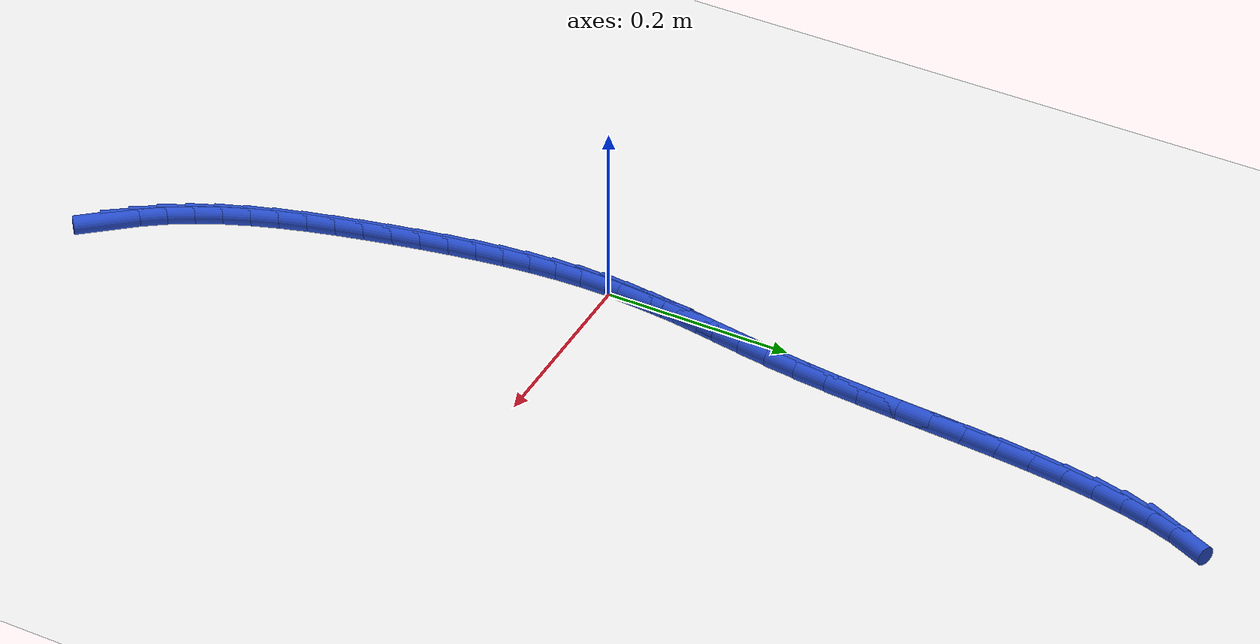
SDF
<sdf version="1.6">
 <world name="default">
  <model name="ground_plane">
   <static>1</static>
   <link name="link">
    <collision name="collision">
     <geometry><plane><normal>0 0 1</normal><size>100 100</size></plane></geometry>
     <surface><friction><ode><mu>100</mu><mu2>50</mu2></ode></friction></surface>
    </collision>
    <visual name="visual">
     <cast_shadows>0</cast_shadows>
     <geometry><plane><normal>0 0 1</normal><size>100 100</size></plane></geometry>
     <material>
      <script><uri>file://media/materials/scripts/gazebo.material</uri><name>Gazebo/WhiteGlow</name></script>
     </material>
    </visual>
   </link>
  </model>
  <model name="line">
   <link name="link_0">
    <pose>-1.6479873021779667e-17 0.0 0.01 0 1.57 1.5184382656846507</pose>
    <collision name="collision">
     <geometry><cylinder><radius>0.01</radius><length>0.08</length></cylinder></geometry>
    </collision>
    <visual name="visual">
     <material>
      <script><name>Gazebo/Blue</name><uri>file://media/materials/scripts/gazebo.material</uri></script>
     </material>
     <geometry><cylinder><radius>0.01</radius><length>0.08</length></cylinder></geometry>
    </visual>
   </link>
   <link name="link_1">
    <pose>0.0014574475222923252 0.027810721952906785 0.01 0 1.57 1.4770112874705195</pose>
    <collision name="collision">
     <geometry><cylinder><radius>0.01</radius><length>0.08</length></cylinder></geometry>
    </collision>
    <visual name="visual">
     <material>
      <script><name>Gazebo/Blue</name><uri>file://media/materials/scripts/gazebo.material</uri></script>
     </material>
     <geometry><cylinder><radius>0.01</radius><length>0.08</length></cylinder></geometry>
    </visual>
   </link>
   <link name="link_2">
    <pose>0.004054440207986188 0.05542039371427029 0.01 0 1.57 1.4455119472380362</pose>
    <collision name="collision">
     <geometry><cylinder><radius>0.01</radius><length>0.08</length></cylinder></geometry>
    </collision>
    <visual name="visual">
     <material>
      <script><name>Gazebo/Blue</name><uri>file://media/materials/scripts/gazebo.material</uri></script>
     </material>
     <geometry><cylinder><radius>0.01</radius><length>0.08</length></cylinder></geometry>
    </visual>
   </link>
   <link name="link_3">
    <pose>0.007540841671047062 0.08310254612929184 0.01 0 1.57 1.424648393871587</pose>
    <collision name="collision">
     <geometry><cylinder><radius>0.01</radius><length>0.08</length></cylinder></geometry>
    </collision>
    <visual name="visual">
     <material>
      <script><name>Gazebo/Blue</name><uri>file://media/materials/scripts/gazebo.material</uri></script>
     </material>
     <geometry><cylinder><radius>0.01</radius><length>0.08</length></cylinder></geometry>
    </visual>
   </link>
   <link name="link_4">
    <pose>0.011666515525440456 0.11113071004317263 0.01 0 1.57 1.4144843685888346</pose>
    <collision name="collision">
     <geometry><cylinder><radius>0.01</radius><length>0.08</length></cylinder></geometry>
    </collision>
    <visual name="visual">
     <material>
      <script><name>Gazebo/Blue</name><uri>file://media/materials/scripts/gazebo.material</uri></script>
     </material>
     <geometry><cylinder><radius>0.01</radius><length>0.08</length></cylinder></geometry>
    </visual>
   </link>
   <link name="link_5">
    <pose>0.01618132538513185 0.13977841630111387 0.01 0 1.57 1.414542060446958</pose>
    <collision name="collision">
     <geometry><cylinder><radius>0.01</radius><length>0.08</length></cylinder></geometry>
    </collision>
    <visual name="visual">
     <material>
      <script><name>Gazebo/Blue</name><uri>file://media/materials/scripts/gazebo.material</uri></script>
     </material>
     <geometry><cylinder><radius>0.01</radius><length>0.08</length></cylinder></geometry>
    </visual>
   </link>
   <link name="link_6">
    <pose>0.020835134864086738 0.16931919574831683 0.01 0 1.57 1.423927315164349</pose>
    <collision name="collision">
     <geometry><cylinder><radius>0.01</radius><length>0.08</length></cylinder></geometry>
    </collision>
    <visual name="visual">
     <material>
      <script><name>Gazebo/Blue</name><uri>file://media/materials/scripts/gazebo.material</uri></script>
     </material>
     <geometry><cylinder><radius>0.01</radius><length>0.08</length></cylinder></geometry>
    </visual>
   </link>
   <link name="link_7">
    <pose>0.025377807576270624 0.20002657922998274 0.01 0 1.57 1.4414533479040172</pose>
    <collision name="collision">
     <geometry><cylinder><radius>0.01</radius><length>0.08</length></cylinder></geometry>
    </collision>
    <visual name="visual">
     <material>
      <script><name>Gazebo/Blue</name><uri>file://media/materials/scripts/gazebo.material</uri></script>
     </material>
     <geometry><cylinder><radius>0.01</radius><length>0.08</length></cylinder></geometry>
    </visual>
   </link>
   <link name="link_8">
    <pose>0.029559207135649 0.2321740975913128 0.01 0 1.57 1.4654073668593173</pose>
    <collision name="collision">
     <geometry><cylinder><radius>0.01</radius><length>0.08</length></cylinder></geometry>
    </collision>
    <visual name="visual">
     <material>
      <script><name>Gazebo/Blue</name><uri>file://media/materials/scripts/gazebo.material</uri></script>
     </material>
     <geometry><cylinder><radius>0.01</radius><length>0.08</length></cylinder></geometry>
    </visual>
   </link>
   <link name="link_9">
    <pose>0.03313945484801601 0.2660199844694474 0.01 0 1.57 1.4872548854704863</pose>
    <collision name="collision">
     <geometry><cylinder><radius>0.01</radius><length>0.08</length></cylinder></geometry>
    </collision>
    <visual name="visual">
     <material>
      <script><name>Gazebo/Blue</name><uri>file://media/materials/scripts/gazebo.material</uri></script>
     </material>
     <geometry><cylinder><radius>0.01</radius><length>0.08</length></cylinder></geometry>
    </visual>
   </link>
   <link name="link_10">
    <pose>0.03610869935225758 0.3014794357077643 0.01 0 1.57 1.500647299681323</pose>
    <collision name="collision">
     <geometry><cylinder><radius>0.01</radius><length>0.08</length></cylinder></geometry>
    </collision>
    <visual name="visual">
     <material>
      <script><name>Gazebo/Blue</name><uri>file://media/materials/scripts/gazebo.material</uri></script>
     </material>
     <geometry><cylinder><radius>0.01</radius><length>0.08</length></cylinder></geometry>
    </visual>
   </link>
   <link name="link_11">
    <pose>0.03868388604429441 0.3381294270863123 0.01 0 1.57 1.5065138532888493</pose>
    <collision name="collision">
     <geometry><cylinder><radius>0.01</radius><length>0.08</length></cylinder></geometry>
    </collision>
    <visual name="visual">
     <material>
      <script><name>Gazebo/Blue</name><uri>file://media/materials/scripts/gazebo.material</uri></script>
     </material>
     <geometry><cylinder><radius>0.01</radius><length>0.08</length></cylinder></geometry>
    </visual>
   </link>
   <link name="link_12">
    <pose>0.041091571856145315 0.3755326007835918 0.01 0 1.57 1.5054914585599306</pose>
    <collision name="collision">
     <geometry><cylinder><radius>0.01</radius><length>0.08</length></cylinder></geometry>
    </collision>
    <visual name="visual">
     <material>
      <script><name>Gazebo/Blue</name><uri>file://media/materials/scripts/gazebo.material</uri></script>
     </material>
     <geometry><cylinder><radius>0.01</radius><length>0.08</length></cylinder></geometry>
    </visual>
   </link>
   <link name="link_13">
    <pose>0.043558313719829087 0.4132515989781033 0.01 0 1.57 1.497720817772451</pose>
    <collision name="collision">
     <geometry><cylinder><radius>0.01</radius><length>0.08</length></cylinder></geometry>
    </collision>
    <visual name="visual">
     <material>
      <script><name>Gazebo/Blue</name><uri>file://media/materials/scripts/gazebo.material</uri></script>
     </material>
     <geometry><cylinder><radius>0.01</radius><length>0.08</length></cylinder></geometry>
    </visual>
   </link>
   <link name="link_14">
    <pose>0.04631066856736449 0.4508490638483472 0.01 0 1.57 1.4828849888272446</pose>
    <collision name="collision">
     <geometry><cylinder><radius>0.01</radius><length>0.08</length></cylinder></geometry>
    </collision>
    <visual name="visual">
     <material>
      <script><name>Gazebo/Blue</name><uri>file://media/materials/scripts/gazebo.material</uri></script>
     </material>
     <geometry><cylinder><radius>0.01</radius><length>0.08</length></cylinder></geometry>
    </visual>
   </link>
   <link name="link_15">
    <pose>0.049575193330770304 0.487887637572824 0.01 0 1.57 1.460178876890645</pose>
    <collision name="collision">
     <geometry><cylinder><radius>0.01</radius><length>0.08</length></cylinder></geometry>
    </collision>
    <visual name="visual">
     <material>
      <script><name>Gazebo/Blue</name><uri>file://media/materials/scripts/gazebo.material</uri></script>
     </material>
     <geometry><cylinder><radius>0.01</radius><length>0.08</length></cylinder></geometry>
    </visual>
   </link>
   <link name="link_16">
    <pose>0.053578444942065345 0.5239299623300342 0.01 0 1.57 1.428207487026027</pose>
    <collision name="collision">
     <geometry><cylinder><radius>0.01</radius><length>0.08</length></cylinder></geometry>
    </collision>
    <visual name="visual">
     <material>
      <script><name>Gazebo/Blue</name><uri>file://media/materials/scripts/gazebo.material</uri></script>
     </material>
     <geometry><cylinder><radius>0.01</radius><length>0.08</length></cylinder></geometry>
    </visual>
   </link>
   <link name="link_17">
    <pose>0.0585469803332684 0.5585386802984782 0.01 0 1.57 1.3847978749277365</pose>
    <collision name="collision">
     <geometry><cylinder><radius>0.01</radius><length>0.08</length></cylinder></geometry>
    </collision>
    <visual name="visual">
     <material>
      <script><name>Gazebo/Blue</name><uri>file://media/materials/scripts/gazebo.material</uri></script>
     </material>
     <geometry><cylinder><radius>0.01</radius><length>0.08</length></cylinder></geometry>
    </visual>
   </link>
   <link name="link_18">
    <pose>0.06470735643639822 0.5912764336566566 0.01 0 1.57 1.326701956054612</pose>
    <collision name="collision">
     <geometry><cylinder><radius>0.01</radius><length>0.08</length></cylinder></geometry>
    </collision>
    <visual name="visual">
     <material>
      <script><name>Gazebo/Blue</name><uri>file://media/materials/scripts/gazebo.material</uri></script>
     </material>
     <geometry><cylinder><radius>0.01</radius><length>0.08</length></cylinder></geometry>
    </visual>
   </link>
   <link name="link_19">
    <pose>0.0722861301834736 0.6217058645830695 0.01 0 1.57 1.2491819491159826</pose>
    <collision name="collision">
     <geometry><cylinder><radius>0.01</radius><length>0.08</length></cylinder></geometry>
    </collision>
    <visual name="visual">
     <material>
      <script><name>Gazebo/Blue</name><uri>file://media/materials/scripts/gazebo.material</uri></script>
     </material>
     <geometry><cylinder><radius>0.01</radius><length>0.08</length></cylinder></geometry>
    </visual>
   </link>
   <link name="link_20">
    <pose>0.08150985850651336 0.649389615256218 0.01 0 1.57 1.1455717473456568</pose>
    <collision name="collision">
     <geometry><cylinder><radius>0.01</radius><length>0.08</length></cylinder></geometry>
    </collision>
    <visual name="visual">
     <material>
      <script><name>Gazebo/Blue</name><uri>file://media/materials/scripts/gazebo.material</uri></script>
     </material>
     <geometry><cylinder><radius>0.01</radius><length>0.08</length></cylinder></geometry>
    </visual>
   </link>
   <link name="link_232">
    <pose>0.14215743847026582 -0.5041512161085064 0.01 0 1.57 -0.8809039316055335</pose>
    <collision name="collision">
     <geometry><cylinder><radius>0.01</radius><length>0.08</length></cylinder></geometry>
    </collision>
    <visual name="visual">
     <material>
      <script><name>Gazebo/Blue</name><uri>file://media/materials/scripts/gazebo.material</uri></script>
     </material>
     <geometry><cylinder><radius>0.01</radius><length>0.08</length></cylinder></geometry>
    </visual>
   </link>
   <link name="link_233">
    <pose>0.12388084248835515 -0.4820019336749314 0.01 0 1.57 -0.9671642884657037</pose>
    <collision name="collision">
     <geometry><cylinder><radius>0.01</radius><length>0.08</length></cylinder></geometry>
    </collision>
    <visual name="visual">
     <material>
      <script><name>Gazebo/Blue</name><uri>file://media/materials/scripts/gazebo.material</uri></script>
     </material>
     <geometry><cylinder><radius>0.01</radius><length>0.08</length></cylinder></geometry>
    </visual>
   </link>
   <link name="link_234">
    <pose>0.10757779728315474 -0.458356584310406 0.01 0 1.57 -1.0480569457717026</pose>
    <collision name="collision">
     <geometry><cylinder><radius>0.01</radius><length>0.08</length></cylinder></geometry>
    </collision>
    <visual name="visual">
     <material>
      <script><name>Gazebo/Blue</name><uri>file://media/materials/scripts/gazebo.material</uri></script>
     </material>
     <geometry><cylinder><radius>0.01</radius><length>0.08</length></cylinder></geometry>
    </visual>
   </link>
   <link name="link_235">
    <pose>0.0931473562131126 -0.4333126474691159 0.01 0 1.57 -1.1187133006591503</pose>
    <collision name="collision">
     <geometry><cylinder><radius>0.01</radius><length>0.08</length></cylinder></geometry>
    </collision>
    <visual name="visual">
     <material>
      <script><name>Gazebo/Blue</name><uri>file://media/materials/scripts/gazebo.material</uri></script>
     </material>
     <geometry><cylinder><radius>0.01</radius><length>0.08</length></cylinder></geometry>
    </visual>
   </link>
   <link name="link_236">
    <pose>0.08039345790778751 -0.4070498879712661 0.01 0 1.57 -1.1792034184503182</pose>
    <collision name="collision">
     <geometry><cylinder><radius>0.01</radius><length>0.08</length></cylinder></geometry>
    </collision>
    <visual name="visual">
     <material>
      <script><name>Gazebo/Blue</name><uri>file://media/materials/scripts/gazebo.material</uri></script>
     </material>
     <geometry><cylinder><radius>0.01</radius><length>0.08</length></cylinder></geometry>
    </visual>
   </link>
   <link name="link_237">
    <pose>0.06912004087932655 -0.37974807073863626 0.01 0 1.57 -1.229932643566994</pose>
    <collision name="collision">
     <geometry><cylinder><radius>0.01</radius><length>0.08</length></cylinder></geometry>
    </collision>
    <visual name="visual">
     <material>
      <script><name>Gazebo/Blue</name><uri>file://media/materials/scripts/gazebo.material</uri></script>
     </material>
     <geometry><cylinder><radius>0.01</radius><length>0.08</length></cylinder></geometry>
    </visual>
   </link>
   <link name="link_238">
    <pose>0.059131043639876694 -0.35158696069300627 0.01 0 1.57 -1.271455182328641</pose>
    <collision name="collision">
     <geometry><cylinder><radius>0.01</radius><length>0.08</length></cylinder></geometry>
    </collision>
    <visual name="visual">
     <material>
      <script><name>Gazebo/Blue</name><uri>file://media/materials/scripts/gazebo.material</uri></script>
     </material>
     <geometry><cylinder><radius>0.01</radius><length>0.08</length></cylinder></geometry>
    </visual>
   </link>
   <link name="link_239">
    <pose>0.05023040470158505 -0.3227463227561559 0.01 0 1.57 -1.304340797614855</pose>
    <collision name="collision">
     <geometry><cylinder><radius>0.01</radius><length>0.08</length></cylinder></geometry>
    </collision>
    <visual name="visual">
     <material>
      <script><name>Gazebo/Blue</name><uri>file://media/materials/scripts/gazebo.material</uri></script>
     </material>
     <geometry><cylinder><radius>0.01</radius><length>0.08</length></cylinder></geometry>
    </visual>
   </link>
   <link name="link_240">
    <pose>0.04222206257659884 -0.2934059218498657 0.01 0 1.57 -1.3290884709420057</pose>
    <collision name="collision">
     <geometry><cylinder><radius>0.01</radius><length>0.08</length></cylinder></geometry>
    </collision>
    <visual name="visual">
     <material>
      <script><name>Gazebo/Blue</name><uri>file://media/materials/scripts/gazebo.material</uri></script>
     </material>
     <geometry><cylinder><radius>0.01</radius><length>0.08</length></cylinder></geometry>
    </visual>
   </link>
   <link name="link_241">
    <pose>0.03490995577706468 -0.26374552289591385 0.01 0 1.57 -1.346291929056852</pose>
    <collision name="collision">
     <geometry><cylinder><radius>0.01</radius><length>0.08</length></cylinder></geometry>
    </collision>
    <visual name="visual">
     <material>
      <script><name>Gazebo/Blue</name><uri>file://media/materials/scripts/gazebo.material</uri></script>
     </material>
     <geometry><cylinder><radius>0.01</radius><length>0.08</length></cylinder></geometry>
    </visual>
   </link>
   <link name="link_242">
    <pose>0.028104322558147158 -0.23394250990478138 0.01 0 1.57 -1.3613281450647918</pose>
    <collision name="collision">
     <geometry><cylinder><radius>0.01</radius><length>0.08</length></cylinder></geometry>
    </collision>
    <visual name="visual">
     <material>
      <script><name>Gazebo/Blue</name><uri>file://media/materials/scripts/gazebo.material</uri></script>
     </material>
     <geometry><cylinder><radius>0.01</radius><length>0.08</length></cylinder></geometry>
    </visual>
   </link>
   <link name="link_243">
    <pose>0.02176405184561112 -0.20411808617285446 0.01 0 1.57 -1.3795772954772654</pose>
    <collision name="collision">
     <geometry><cylinder><radius>0.01</radius><length>0.08</length></cylinder></geometry>
    </collision>
    <visual name="visual">
     <material>
      <script><name>Gazebo/Blue</name><uri>file://media/materials/scripts/gazebo.material</uri></script>
     </material>
     <geometry><cylinder><radius>0.01</radius><length>0.08</length></cylinder></geometry>
    </visual>
   </link>
   <link name="link_244">
    <pose>0.015998800670407737 -0.17433647402376157 0.01 0 1.57 -1.4014650634874024</pose>
    <collision name="collision">
     <geometry><cylinder><radius>0.01</radius><length>0.08</length></cylinder></geometry>
    </collision>
    <visual name="visual">
     <material>
      <script><name>Gazebo/Blue</name><uri>file://media/materials/scripts/gazebo.material</uri></script>
     </material>
     <geometry><cylinder><radius>0.01</radius><length>0.08</length></cylinder></geometry>
    </visual>
   </link>
   <link name="link_245">
    <pose>0.010924949319980325 -0.14465935480806114 0.01 0 1.57 -1.4272318991507307</pose>
    <collision name="collision">
     <geometry><cylinder><radius>0.01</radius><length>0.08</length></cylinder></geometry>
    </collision>
    <visual name="visual">
     <material>
      <script><name>Gazebo/Blue</name><uri>file://media/materials/scripts/gazebo.material</uri></script>
     </material>
     <geometry><cylinder><radius>0.01</radius><length>0.08</length></cylinder></geometry>
    </visual>
   </link>
   <link name="link_246">
    <pose>0.00665887808177224 -0.11514840987631188 0.01 0 1.57 -1.4571636971917672</pose>
    <collision name="collision">
     <geometry><cylinder><radius>0.01</radius><length>0.08</length></cylinder></geometry>
    </collision>
    <visual name="visual">
     <material>
      <script><name>Gazebo/Blue</name><uri>file://media/materials/scripts/gazebo.material</uri></script>
     </material>
     <geometry><cylinder><radius>0.01</radius><length>0.08</length></cylinder></geometry>
    </visual>
   </link>
   <link name="link_247">
    <pose>0.003316967243226822 -0.08586532057907245 0.01 0 1.57 -1.4915871595448829</pose>
    <collision name="collision">
     <geometry><cylinder><radius>0.01</radius><length>0.08</length></cylinder></geometry>
    </collision>
    <visual name="visual">
     <material>
      <script><name>Gazebo/Blue</name><uri>file://media/materials/scripts/gazebo.material</uri></script>
     </material>
     <geometry><cylinder><radius>0.01</radius><length>0.08</length></cylinder></geometry>
    </visual>
   </link>
   <link name="link_248">
    <pose>0.0010155970917874084 -0.056871768266901546 0.01 0 1.57 -1.5308610089310877</pose>
    <collision name="collision">
     <geometry><cylinder><radius>0.01</radius><length>0.08</length></cylinder></geometry>
    </collision>
    <visual name="visual">
     <material>
      <script><name>Gazebo/Blue</name><uri>file://media/materials/scripts/gazebo.material</uri></script>
     </material>
     <geometry><cylinder><radius>0.01</radius><length>0.08</length></cylinder></geometry>
    </visual>
   </link>
   <link name="link_249">
    <pose>-0.00012885208510265457 -0.02822943429035781 0.01 0 1.57 1.566231899858757</pose>
    <collision name="collision">
     <geometry><cylinder><radius>0.01</radius><length>0.08</length></cylinder></geometry>
    </collision>
    <visual name="visual">
     <material>
      <script><name>Gazebo/Blue</name><uri>file://media/materials/scripts/gazebo.material</uri></script>
     </material>
     <geometry><cylinder><radius>0.01</radius><length>0.08</length></cylinder></geometry>
    </visual>
   </link>
   <link name="link_250">
    <pose>-2.7755575615628914e-17 1.5265566588595902e-16 0.01 0 1.57 1.516138457708617</pose>
    <collision name="collision">
     <geometry><cylinder><radius>0.01</radius><length>0.08</length></cylinder></geometry>
    </collision>
    <visual name="visual">
     <material>
      <script><name>Gazebo/Blue</name><uri>file://media/materials/scripts/gazebo.material</uri></script>
     </material>
     <geometry><cylinder><radius>0.01</radius><length>0.08</length></cylinder></geometry>
    </visual>
   </link>
   <link name="link_251">
    <pose>0.001518533634538629 0.027754853253613626 0.01 0 1.57 1.4601279424487212</pose>
    <collision name="collision">
     <geometry><cylinder><radius>0.01</radius><length>0.08</length></cylinder></geometry>
    </collision>
    <visual name="visual">
     <material>
      <script><name>Gazebo/Blue</name><uri>file://media/materials/scripts/gazebo.material</uri></script>
     </material>
     <geometry><cylinder><radius>0.01</radius><length>0.08</length></cylinder></geometry>
    </visual>
   </link>
   <link name="link_252">
    <pose>0.00454312910595666 0.054973444119923984 0.01 0 1.57 1.488341451409879</pose>
    <collision name="collision">
     <geometry><cylinder><radius>0.01</radius><length>0.08</length></cylinder></geometry>
    </collision>
    <visual name="visual">
     <material>
      <script><name>Gazebo/Blue</name><uri>file://media/materials/scripts/gazebo.material</uri></script>
     </material>
     <geometry><cylinder><radius>0.01</radius><length>0.08</length></cylinder></geometry>
    </visual>
   </link>
  </model>
 </world>
</sdf>
